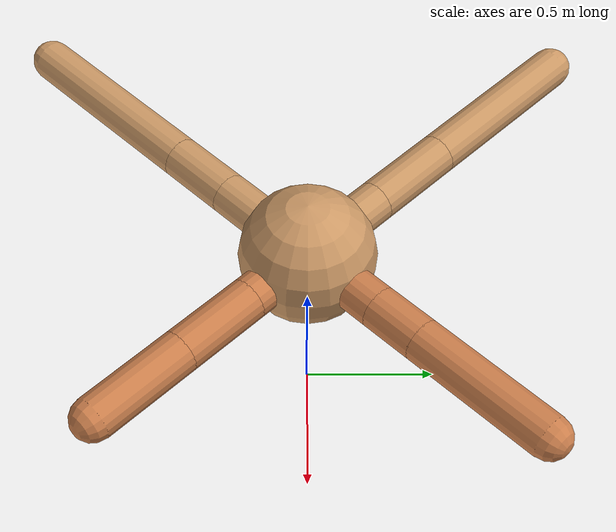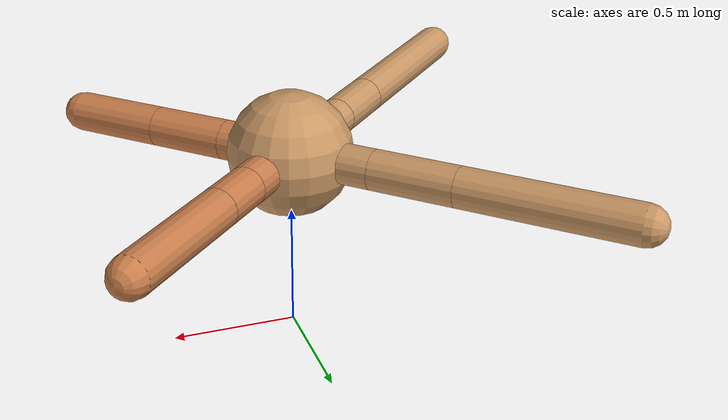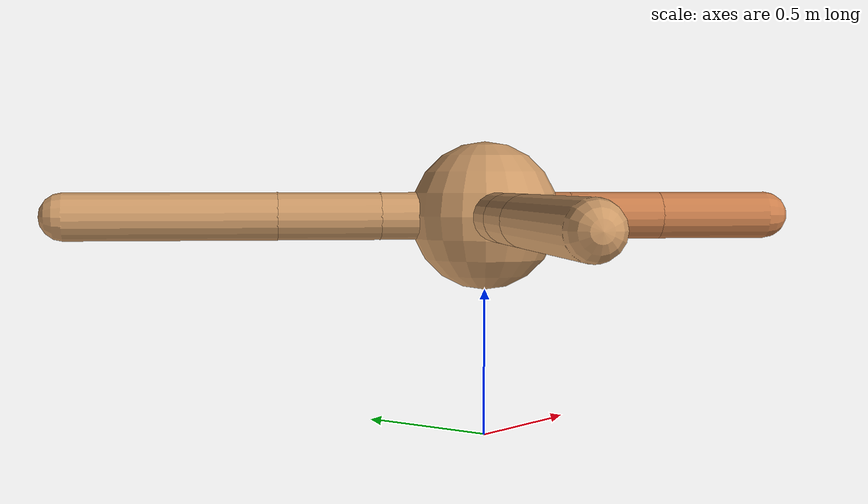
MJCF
<mujoco model="ant">
  <compiler angle="degree" coordinate="local" inertiafromgeom="true" />
  <option integrator="RK4" timestep="0.01" />
  <custom>
    <numeric data="0.0 0.0 0.55 1.0 0.0 0.0 0.0 0.0 1.0 0.0 -1.0 0.0 -1.0 0.0 1.0" name="init_qpos" />
  </custom>
  <default>
    <joint armature="1" damping="1" limited="true" />
    <geom conaffinity="0" condim="3" density="5.0" friction="1.5 0.1 0.1" margin="0.01" rgba="0.8 0.6 0.4 1" />
  </default>
  <worldbody>
    <body name="torso" pos="0 0 0.75">
      <geom name="torso_geom" pos="0 0 0" size="0.25" type="sphere" />

      <body name="front_left_leg" pos="0 0 0">
        <geom fromto="0.0 0.0 0.0 0.24165524700248042 0.24165524700248042 0.0" name="aux_1_geom" size="0.08" type="capsule" rgba=".8 .5 .3 1" />
        <body name="aux_1" pos="0.24165524700248042 0.24165524700248042 0.0">
          <joint axis="0 0 1" name="hip_1" pos="0.0 0.0 0.0" range="-40 40" type="hinge" />
          <geom fromto="0.0 0.0 0.0 0.1395906771398092 0.1395906771398092 0.0" name="left_leg_geom" size="0.08" type="capsule" rgba=".8 .5 .3 1" />
          <body pos="0.1395906771398092 0.1395906771398092 0.0" name="front_left_foot">
            <joint axis="-1 1 0" name="ankle_1" pos="0.0 0.0 0.0" range="30 100" type="hinge" />
            <geom fromto="0.0 0.0 0.0 0.3835619709016133 0.3835619709016133 0.0" name="left_ankle_geom" size="0.08" type="capsule" rgba=".8 .5 .3 1" />
          </body>
        </body>
      </body>
      <body name="front_right_leg" pos="0 0 0">
        <geom fromto="0.0 0.0 0.0 -0.2515334086252516 0.2515334086252516 0.0" name="aux_2_geom" size="0.08" type="capsule" />
        <body name="aux_2" pos="-0.2515334086252516 0.2515334086252516 0.0">
          <joint axis="0 0 1" name="hip_2" pos="0.0 0.0 0.0" range="-40 40" type="hinge" />
          <geom fromto="0.0 0.0 0.0 -0.2423833795266666 0.2423833795266666 0.0" name="right_leg_geom" size="0.08" type="capsule" />
          <body pos="-0.2423833795266666 0.2423833795266666 0.0" name="front_right_foot">
            <joint axis="1 1 0" name="ankle_2" pos="0.0 0.0 0.0" range="-100 -30" type="hinge" />
            <geom fromto="0.0 0.0 0.0 -0.4905878230027818 0.4905878230027818 0.0" name="right_ankle_geom" size="0.08" type="capsule" />
          </body>
        </body>
      </body>
      <body name="left_back_leg" pos="0 0 0">
        <geom fromto="0.0 0.0 0.0 -0.29062772993336533 -0.29062772993336533 0.0" name="aux_3_geom" size="0.08" type="capsule" />
        <body name="aux_3" pos="-0.29062772993336533 -0.29062772993336533 0.0">
          <joint axis="0 0 1" name="hip_3" pos="0.0 0.0 0.0" range="-40 40" type="hinge" />
          <geom fromto="0.0 0.0 0.0 -0.18825279042558113 -0.18825279042558113 0.0" name="back_leg_geom" size="0.08" type="capsule" />
          <body pos="-0.18825279042558113 -0.18825279042558113 0.0" name="left_back_foot">
            <joint axis="-1 1 0" name="ankle_3" pos="0.0 0.0 0.0" range="-100 -30" type="hinge" />
            <geom fromto="0.0 0.0 0.0 -0.5539686642523017 -0.5539686642523017 0.0" name="third_ankle_geom" size="0.08" type="capsule" />
          </body>
        </body>
      </body>
      <body name="right_back_leg" pos="0 0 0">
        <geom fromto="0.0 0.0 0.0 0.20565032397894845 -0.20565032397894845 0.0" name="aux_4_geom" size="0.08" type="capsule" rgba=".8 .5 .3 1" />
        <body name="aux_4" pos="0.20565032397894845 -0.20565032397894845 0.0">
          <joint axis="0 0 1" name="hip_4" pos="0.0 0.0 0.0" range="-40 40" type="hinge" />
          <geom fromto="0.0 0.0 0.0 0.2218110426184149 -0.2218110426184149 0.0" name="rightback_leg_geom" size="0.08" type="capsule" rgba=".8 .5 .3 1" />
          <body pos="0.2218110426184149 -0.2218110426184149 0.0" name="right_back_foot">
            <joint axis="1 1 0" name="ankle_4" pos="0.0 0.0 0.0" range="30 100" type="hinge" />
            <geom fromto="0.0 0.0 0.0 0.26690777915271396 -0.26690777915271396 0.0" name="fourth_ankle_geom" size="0.08" type="capsule" rgba=".8 .5 .3 1" />
          </body>
        </body>
      </body>
    </body>
  </worldbody>
  <actuator>
    <motor ctrllimited="true" ctrlrange="-1.0 1.0" joint="hip_4" gear="150" />
    <motor ctrllimited="true" ctrlrange="-1.0 1.0" joint="ankle_4" gear="150" />
    <motor ctrllimited="true" ctrlrange="-1.0 1.0" joint="hip_1" gear="150" />
    <motor ctrllimited="true" ctrlrange="-1.0 1.0" joint="ankle_1" gear="150" />
    <motor ctrllimited="true" ctrlrange="-1.0 1.0" joint="hip_2" gear="150" />
    <motor ctrllimited="true" ctrlrange="-1.0 1.0" joint="ankle_2" gear="150" />
    <motor ctrllimited="true" ctrlrange="-1.0 1.0" joint="hip_3" gear="150" />
    <motor ctrllimited="true" ctrlrange="-1.0 1.0" joint="ankle_3" gear="150" />
  </actuator>
</mujoco>
